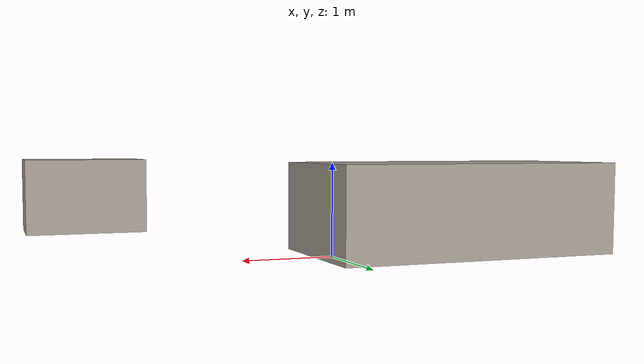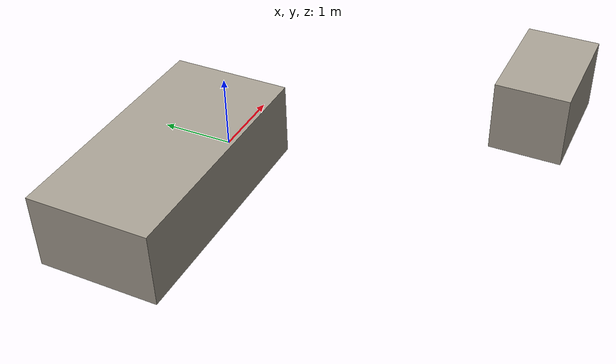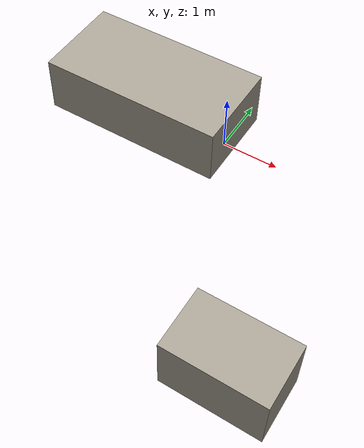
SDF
<?xml version="1.0" ?>
<sdf version="1.7">
    <model name="037_obstacles_base">

        <!-- Big table clump at the right wall          -->
        <!-- Color: #A69F92FF          -->
        <link name="table_clump_left">
        <pose>-1.40 0 0.5 0 0 0</pose>

        <collision name="table_clump_left_collision">
            <geometry>
            <box>
                <size>3.2 1.6 1.0 0 0 0</size>
            </box>
            </geometry>
        </collision>

        <visual name="table_clump_left_visual">
            <geometry>
            <box>
                <size>3.2 1.6 1.0 0 0 0</size>
            </box>
            </geometry>

            <material>
            <ambient>0.6510 0.6235 0.5725 1</ambient>
            <diffuse>0.6510 0.6235 0.5725 1</diffuse>
            <specular>0.1 0.1 0.1 1</specular>
            </material>
        </visual>
        </link>

        <link name="table_clump_right_bottom">
        <pose>2.2 -3.75 0.5 0 0 0</pose>

        <collision name="table_clump_right_bottom_collision">
            <geometry>
            <box>
                <size>1.6 1.0 1.0 0 0 0</size>
            </box>
            </geometry>
        </collision>

        <!-- Small table clump at the bottom left corner          -->
        <!-- Color: #A69F92FF          -->

        <visual name="table_clump_right_bottom_visual">
            <geometry>
            <box>
                <size>1.6 1.0 1.0 0 0 0</size>
            </box>
            </geometry>

            <material>
            <ambient>0.6510 0.6235 0.5725 1</ambient>
            <diffuse>0.6510 0.6235 0.5725 1</diffuse>
            <specular>0.1 0.1 0.1 1</specular>
            </material>
        </visual>
        </link>

    </model>
</sdf>
